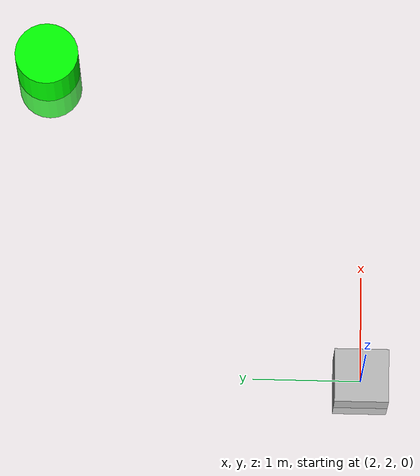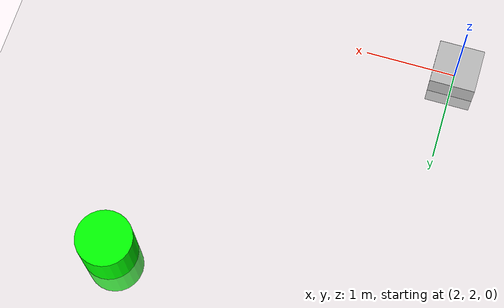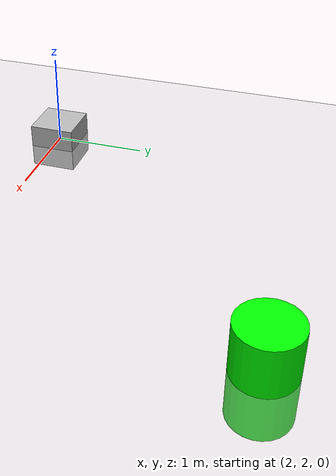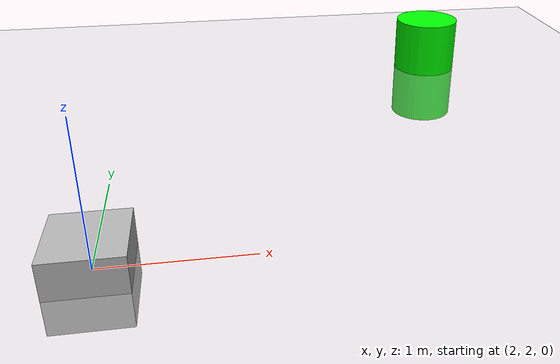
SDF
<?xml version="1.0" ?>
<sdf version="1.6">
  <world name="default">
    <!-- Add a ground plane -->
    <include>
      <uri>model://ground_plane</uri>
    </include>

    <!-- Add a sun for lighting -->
    <include>
      <uri>model://sun</uri>
    </include>

    <!-- Add your car model -->

    <!-- Example obstacle -->
    <model name="obstacle_10">
      <pose>2 2 0 0 0 0</pose>
      <link name="link">
        <collision name="collision">
          <geometry>
            <box>
              <size>0.5 0.5 0.5</size>
            </box>
          </geometry>
        </collision>
        <visual name="visual">
          <geometry>
            <box>
              <size>0.5 0.5 0.5</size>
            </box>
          </geometry>
        </visual>
      </link>
    </model>

    <!-- Goal object -->
    <model name="goal">
      <pose>5 5 0 0 0 0</pose>
      <link name="link">
        <collision name="collision">
          <geometry>
            <cylinder>
              <radius>0.3</radius>
              <length>1</length>
            </cylinder>
          </geometry>
        </collision>
        <visual name="visual">
          <geometry>
            <cylinder>
              <radius>0.3</radius>
              <length>1</length>
            </cylinder>
          </geometry>
          <material>
            <ambient>0 1 0 1</ambient> <!-- Green color for visibility -->
          </material>
        </visual>
      </link>
    </model>
  </world>
</sdf>
